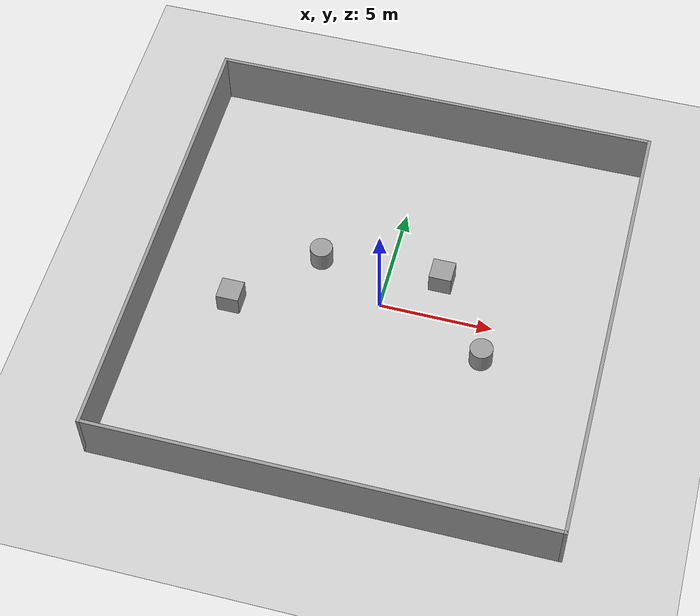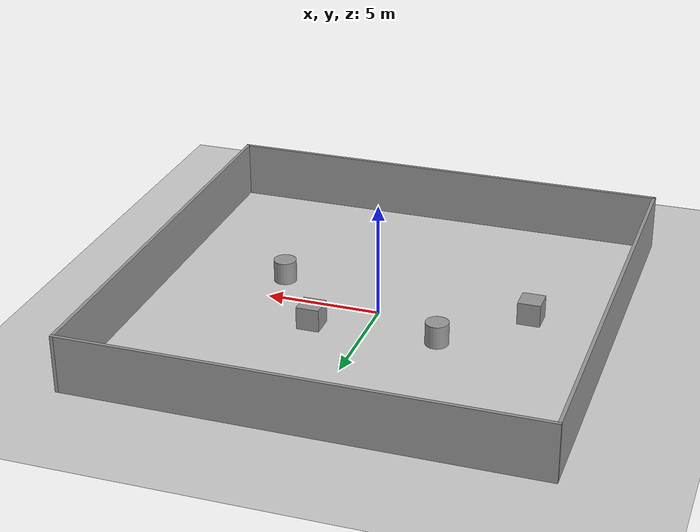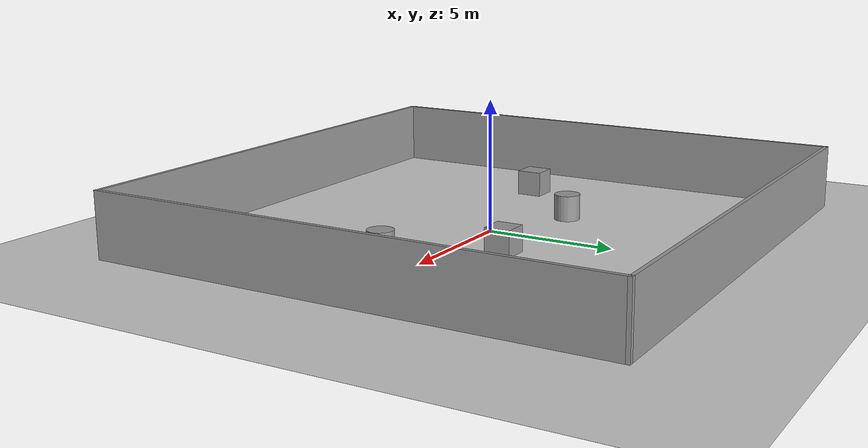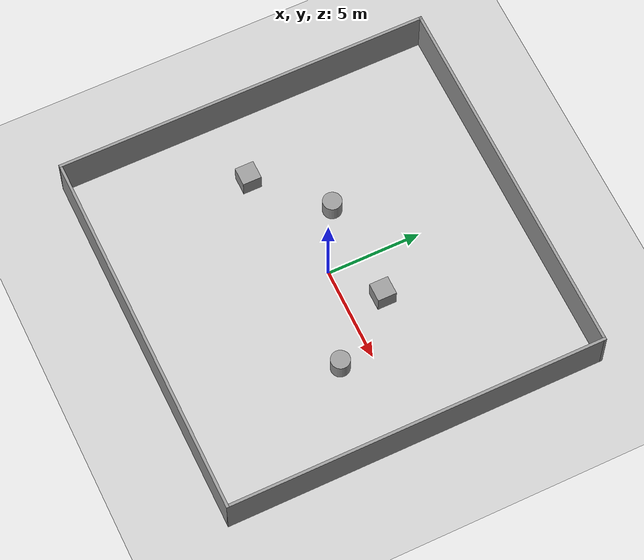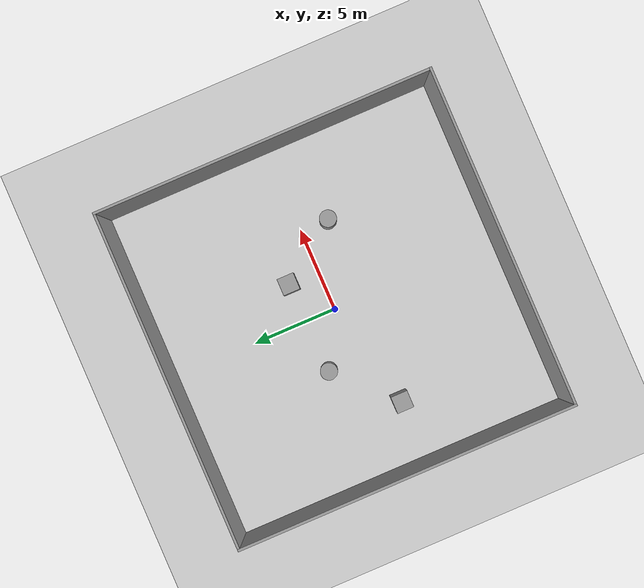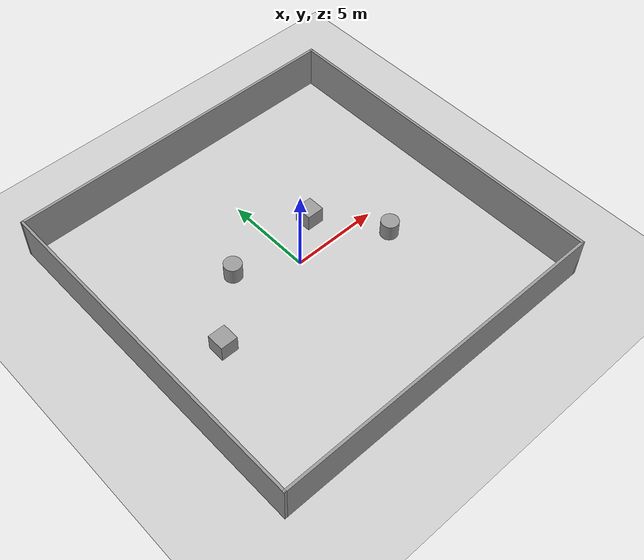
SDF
<sdf version="1.6">
 <world name="default">
  <light name="sun" type="directional">
   <pose>0 0 10 0 -0 0</pose>
   <diffuse>0.8 0.8 0.8 1</diffuse>
   <specular>0.2 0.2 0.2 1</specular>
   <attenuation>
    <range>1000</range>
    <constant>0.9</constant>
    <linear>0.01</linear>
    <quadratic>0.001</quadratic>
   </attenuation>
   <direction>-0.5 0.1 -0.9</direction>
  </light>
  <model name="ground_plane">
   <static>1</static>
   <link name="link">
    <collision name="collision">
     <geometry><plane><normal>0 0 1</normal><size>100 100</size></plane></geometry>
     <surface><friction><ode><mu>100</mu><mu2>50</mu2></ode></friction></surface>
    </collision>
    <visual name="visual">
     <cast_shadows>0</cast_shadows>
     <geometry><plane><normal>0 0 1</normal><size>100 100</size></plane></geometry>
     <material>
      <script><uri>file://media/materials/scripts/gazebo.material</uri><name>Gazebo/Grey</name></script>
     </material>
    </visual>
   </link>
  </model>
  <gravity>0 0 -9.8</gravity>
  <magnetic_field>6e-06 2.3e-05 -4.2e-05</magnetic_field>
  <atmosphere type="adiabatic"/>
  <physics name="default_physics" default="0" type="ode">
   <max_step_size>0.001</max_step_size>
   <real_time_factor>1</real_time_factor>
   <real_time_update_rate>1000</real_time_update_rate>
  </physics>
  <scene><ambient>0.4 0.4 0.4 1</ambient><background>0.7 0.7 0.7 1</background><shadows>1</shadows></scene>
  <spherical_coordinates>
   <surface_model>EARTH_WGS84</surface_model>
   <latitude_deg>0</latitude_deg>
   <longitude_deg>0</longitude_deg>
   <elevation>0</elevation>
   <heading_deg>0</heading_deg>
  </spherical_coordinates>
  <model name="gazebo_sac_train_2020">
   <link name="Wall_3">
    <collision name="Wall_3_Collision">
     <geometry><box><size>20 0.15 2.5</size></box></geometry>
     <pose>0 0 1.25 0 -0 0</pose>
    </collision>
    <visual name="Wall_3_Visual">
     <pose>0 0 1.25 0 -0 0</pose>
     <geometry><box><size>20 0.15 2.5</size></box></geometry>
     <material>
      <script><uri>file://media/materials/scripts/gazebo.material</uri><name>Gazebo/Grey</name></script>
      <ambient>1 1 1 1</ambient>
     </material>
     <meta><layer>0</layer></meta>
    </visual>
    <pose>-9.925 -0 0 0 -0 -1.5708</pose>
   </link>
   <link name="Wall_4">
    <collision name="Wall_4_Collision">
     <geometry><box><size>20 0.15 2.5</size></box></geometry>
     <pose>0 0 1.25 0 -0 0</pose>
    </collision>
    <visual name="Wall_4_Visual">
     <pose>0 0 1.25 0 -0 0</pose>
     <geometry><box><size>20 0.15 2.5</size></box></geometry>
     <material>
      <script><uri>file://media/materials/scripts/gazebo.material</uri><name>Gazebo/Grey</name></script>
      <ambient>1 1 1 1</ambient>
     </material>
     <meta><layer>0</layer></meta>
    </visual>
    <pose>0 -9.925 0 0 -0 0</pose>
   </link>
   <link name="Wall_5">
    <collision name="Wall_5_Collision">
     <geometry><box><size>20 0.15 2.5</size></box></geometry>
     <pose>0 0 1.25 0 -0 0</pose>
    </collision>
    <visual name="Wall_5_Visual">
     <pose>0 0 1.25 0 -0 0</pose>
     <geometry><box><size>20 0.15 2.5</size></box></geometry>
     <material>
      <script><uri>file://media/materials/scripts/gazebo.material</uri><name>Gazebo/Grey</name></script>
      <ambient>1 1 1 1</ambient>
     </material>
     <meta><layer>0</layer></meta>
    </visual>
    <pose>9.925 -0 0 0 -0 1.5708</pose>
   </link>
   <link name="Wall_6">
    <collision name="Wall_6_Collision">
     <geometry><box><size>20 0.15 2.5</size></box></geometry>
     <pose>0 0 1.25 0 -0 0</pose>
    </collision>
    <visual name="Wall_6_Visual">
     <pose>0 0 1.25 0 -0 0</pose>
     <geometry><box><size>20 0.15 2.5</size></box></geometry>
     <material>
      <script><uri>file://media/materials/scripts/gazebo.material</uri><name>Gazebo/Grey</name></script>
      <ambient>1 1 1 1</ambient>
     </material>
     <meta><layer>0</layer></meta>
    </visual>
    <pose>0 9.925 0 0 -0 3.14159</pose>
   </link>
   <static>1</static>
  </model>
  <model name="unit_box">
   <pose>2.3443 1.84746 0.5 0 -0 0</pose>
   <link name="link">
    <inertial>
     <mass>1</mass>
     <inertia>
      <ixx>0.166667</ixx>
      <ixy>0</ixy>
      <ixz>0</ixz>
      <iyy>0.166667</iyy>
      <iyz>0</iyz>
      <izz>0.166667</izz>
     </inertia>
    </inertial>
    <collision name="collision"><geometry><box><size>1 1 1</size></box></geometry></collision>
    <visual name="visual">
     <geometry><box><size>1 1 1</size></box></geometry>
     <material>
      <script><name>Gazebo/Grey</name><uri>file://media/materials/scripts/gazebo.material</uri></script>
     </material>
    </visual>
   </link>
  </model>
  <model name="unit_box_0">
   <pose>-6.31594 -1.42457 0.5 0 -0 0</pose>
   <link name="link">
    <inertial>
     <mass>1</mass>
     <inertia>
      <ixx>0.166667</ixx>
      <ixy>0</ixy>
      <ixz>0</ixz>
      <iyy>0.166667</iyy>
      <iyz>0</iyz>
      <izz>0.166667</izz>
     </inertia>
    </inertial>
    <collision name="collision"><geometry><box><size>1 1 1</size></box></geometry></collision>
    <visual name="visual">
     <geometry><box><size>1 1 1</size></box></geometry>
     <material>
      <script><name>Gazebo/Grey</name><uri>file://media/materials/scripts/gazebo.material</uri></script>
     </material>
    </visual>
   </link>
  </model>
  <model name="unit_cylinder">
   <pose>-3.09111 1.69649 0.499997 4e-06 3e-06 -0</pose>
   <link name="link">
    <inertial>
     <mass>1</mass>
     <inertia><ixx>0.145833</ixx><ixy>0</ixy><ixz>0</ixz><iyy>0.145833</iyy><iyz>0</iyz><izz>0.125</izz></inertia>
    </inertial>
    <collision name="collision">
     <geometry><cylinder><radius>0.5</radius><length>1</length></cylinder></geometry>
    </collision>
    <visual name="visual">
     <geometry><cylinder><radius>0.5</radius><length>1</length></cylinder></geometry>
     <material>
      <script><name>Gazebo/Grey</name><uri>file://media/materials/scripts/gazebo.material</uri></script>
     </material>
    </visual>
   </link>
  </model>
  <model name="unit_cylinder_0">
   <pose>4.86362 -1.66538 0.5 0 -0 0</pose>
   <link name="link">
    <inertial>
     <mass>1</mass>
     <inertia><ixx>0.145833</ixx><ixy>0</ixy><ixz>0</ixz><iyy>0.145833</iyy><iyz>0</iyz><izz>0.125</izz></inertia>
    </inertial>
    <collision name="collision">
     <geometry><cylinder><radius>0.5</radius><length>1</length></cylinder></geometry>
    </collision>
    <visual name="visual">
     <geometry><cylinder><radius>0.5</radius><length>1</length></cylinder></geometry>
     <material>
      <script><name>Gazebo/Grey</name><uri>file://media/materials/scripts/gazebo.material</uri></script>
     </material>
    </visual>
   </link>
  </model>
 </world>
</sdf>
